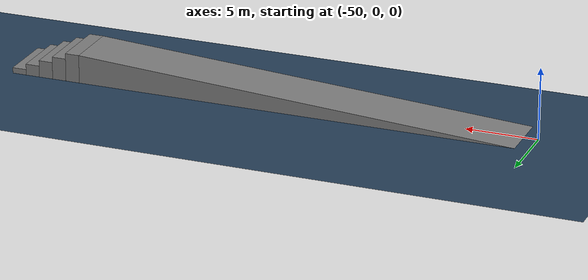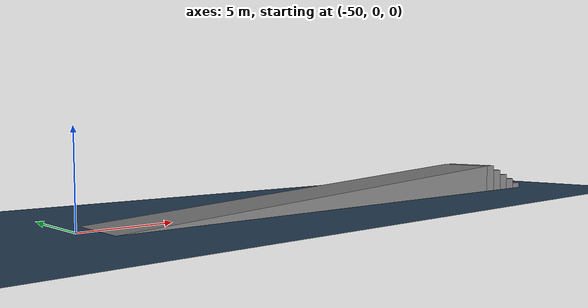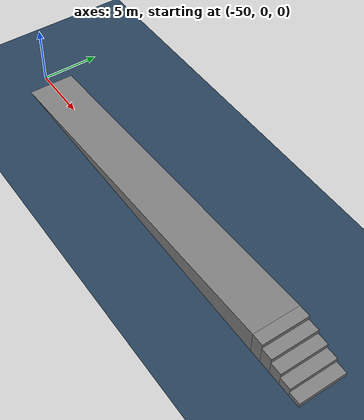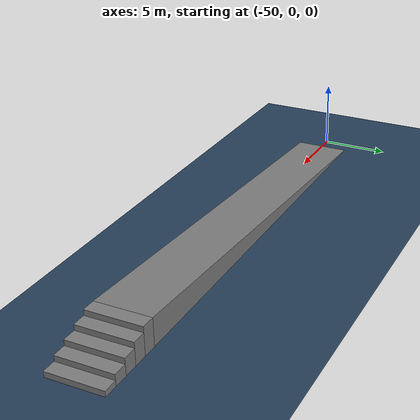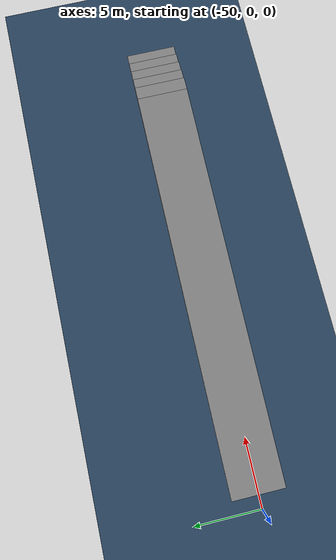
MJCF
<mujoco>

    <asset>
        <texture name="grid" type="2d" builtin="checker" width="512" height="512" rgb1=".1 .2 .3" rgb2=".2 .3 .4"/>
        <material name="grid" texture="grid" texrepeat="1 1" texuniform="true"/>
        <mesh file="assets/ramp.stl"/>
        <mesh file="assets/step1.stl"/>
        <mesh file="assets/step2.stl"/>
        <mesh file="assets/step3.stl"/>
        <mesh file="assets/step4.stl"/>
        <mesh file="assets/step5.stl"/>
    </asset>

    <worldbody>
        <geom type="plane" size="100 100 .01" material="grid"/>
        <geom type="mesh" mesh="ramp"/>
        <geom type="mesh" mesh="step1"/>
        <geom type="mesh" mesh="step2"/>
        <geom type="mesh" mesh="step3"/>
        <geom type="mesh" mesh="step4"/>
        <geom type="mesh" mesh="step5"/>
    </worldbody>

</mujoco>
